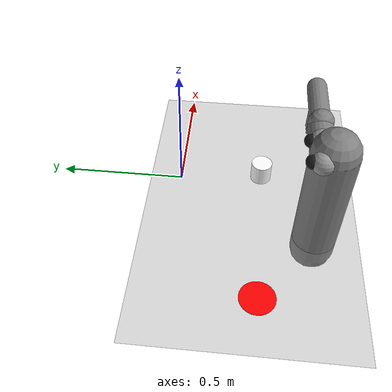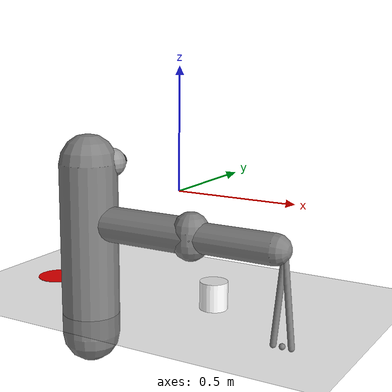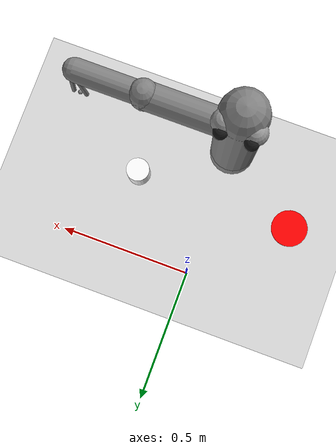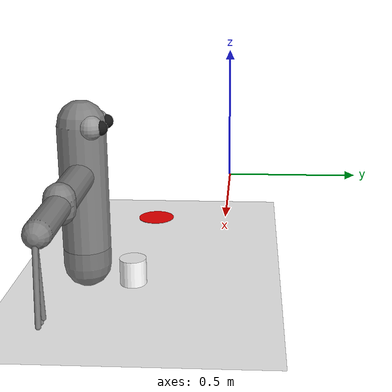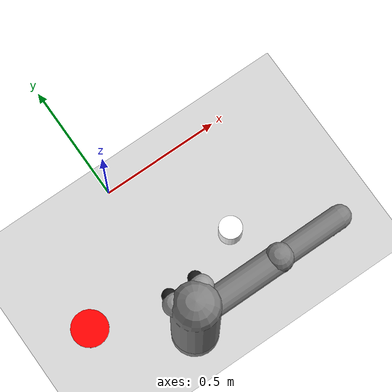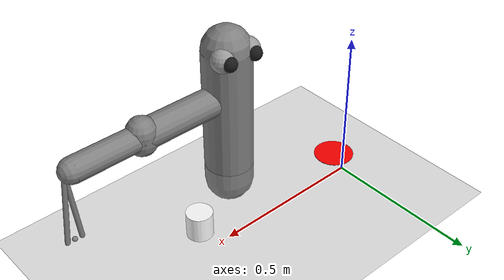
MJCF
<mujoco model="arm3d">
  <compiler inertiafromgeom="true" angle="radian" coordinate="local"/>
  <option timestep="0.01" gravity="0 0 0" iterations="20" integrator="Euler" />

  <default>
    <joint armature='0.04' damping="1" limited="true"/>
    <geom friction=".8 .1 .1" density="300" margin="0.002" condim="1" contype="0" conaffinity="0"/>
  </default>

  <worldbody>
    <light diffuse=".5 .5 .5" pos="0 0 3" dir="0 0 -1"/>
    <geom name="table" type="plane" pos="0 -0.3 -0.325" size="1 0.5 0.1" contype="1" conaffinity="1"/>

    <body name="r_shoulder_pan_link" pos="0 -0.6 0">
      <geom name="e1" type="sphere" rgba="0.6 0.6 0.6 1" pos="-0.06 0.05 0.2" size="0.05" />
      <geom name="e2" type="sphere" rgba="0.6 0.6 0.6 1" pos=" 0.06 0.05 0.2" size="0.05" />
      <geom name="e1p" type="sphere" rgba="0.1 0.1 0.1 1" pos="-0.06 0.09 0.2" size="0.03" />
      <geom name="e2p" type="sphere" rgba="0.1 0.1 0.1 1" pos=" 0.06 0.09 0.2" size="0.03" />
      <geom name="sp" type="capsule" fromto="0 0 -0.4 0 0 0.2" size="0.1" />
      <joint name="r_shoulder_pan_joint" type="hinge" pos="0 0 0" axis="0 0 1" range="-1.5708 3.1416" damping="1.0" />

      <body name="r_upper_arm_link" pos="0 0 0">
        <geom name="ua" type="capsule" fromto="0 0 0 0.4 0 0" size="0.06" />

        <body name="r_elbow_flex_link" pos="0.4 0 0">
          <geom name="ef" type="capsule" fromto="0 0 -0.02 0.0 0 0.02" size="0.06" />
          <joint name="r_elbow_flex_joint" type="hinge" pos="0 0 0" axis="0 0 1" range="-3 3" damping="0.1" />

            <body name="r_forearm_link" pos="0 0 0">
              <geom name="fa" type="capsule" fromto="0 0 0 0.291 0 0" size="0.05" />

              <body name="r_wrist_flex_link" pos="0.321 0 0">
                <geom name="wf" type="capsule" fromto="0 -0.02 0 0 0.02 0" size="0.01" />

                <body name="r_wrist_roll_link" pos="0 0 0">
                  <joint name="r_wrist_roll_joint" type="hinge" pos="0 0 0" limited="true" axis="0 0 1" damping="0.1" range="-1.5708 1.5708"/>
                  <body name="tips_arm" pos="0 0 0">
                    <!-- Include the dummy point to get the location of the fingers -->
                    <geom name="finger_center" type="sphere" pos="0 0 -0.3" size="0.01" />
                  </body>
                  <geom type="capsule" fromto="0.03  0 -0.3  0 0 0" size="0.01" contype="1" conaffinity="1" />
                  <geom type="capsule" fromto="-0.03 0 -0.3  0 0 0" size="0.01" contype="1" conaffinity="1" />
                </body>
              </body>
            </body>
          </body>
        </body>
      </body>

    <!-- If you want to change the position, qpos changes the offset in reset_model() -->
    <body name="object" pos="0.35 -0.35 -0.275" >
      <geom rgba="1 1 1 0" type="sphere" size="0.05 0.05 0.05" density="0.00001" conaffinity="0"/>
      <geom rgba="1 1 1 1" type="cylinder" size="0.05 0.05 0.05" density="0.00001" contype="1" conaffinity="0"/>
      <!--put x before y so that qpos[:2] has the same order -->
      <joint name="obj_slidex" type="slide" pos="0 0 0" axis="1 0 0" range="-10.3213 10.3" damping="0.5"/>
      <joint name="obj_slidey" type="slide" pos="0 0 0" axis="0 1 0" range="-10.3213 10.3" damping="0.5"/>
    </body>

    <body name="goal" pos="-0.35 -0.35 -0.3230">
      <geom rgba="1 0 0 1" type="cylinder" size="0.08 0.001 0.1" density='0.00001' contype="0" conaffinity="0"/>
      <joint name="goal_slidex" type="slide" pos="0 0 0" axis="1 0 0" range="-10.3213 10.3" damping="0.5"/>
      <joint name="goal_slidey" type="slide" pos="0 0 0" axis="0 1 0" range="-10.3213 10.3" damping="0.5"/>
    </body>
  </worldbody>

  <actuator>
    <motor joint="r_shoulder_pan_joint" ctrlrange="-2.0 2.0" ctrllimited="true" />
    <motor joint="r_elbow_flex_joint" ctrlrange="-2.0 2.0" ctrllimited="true" />
    <motor joint="r_wrist_roll_joint" ctrlrange="-2.0 2.0" ctrllimited="true"/>
  </actuator>
</mujoco>
